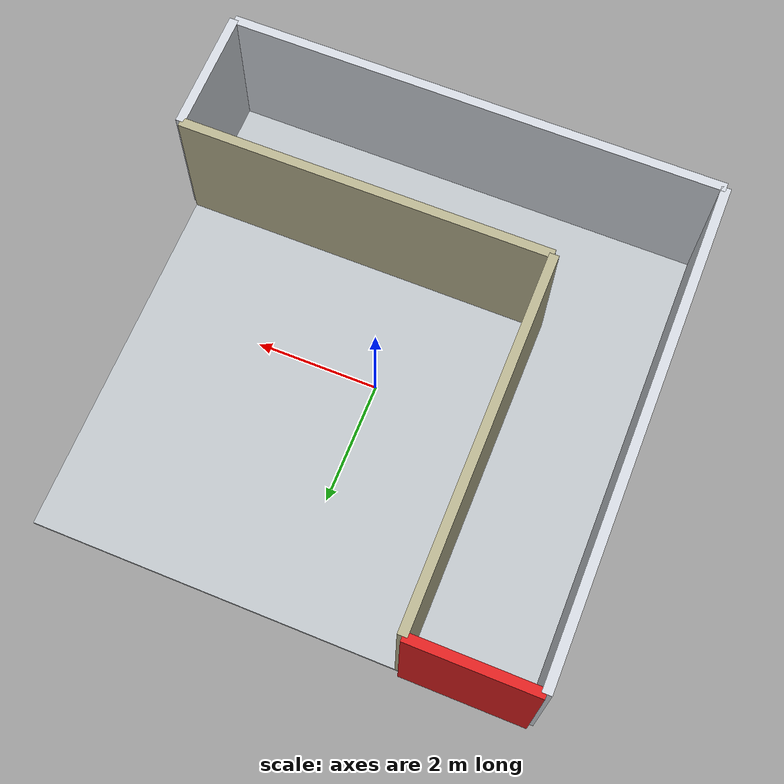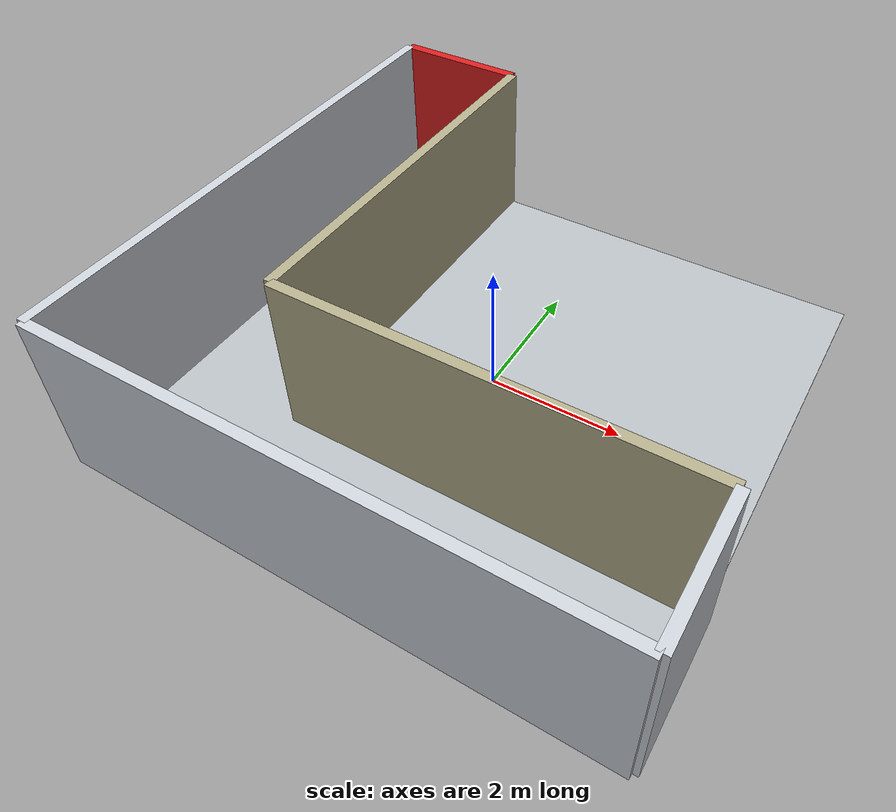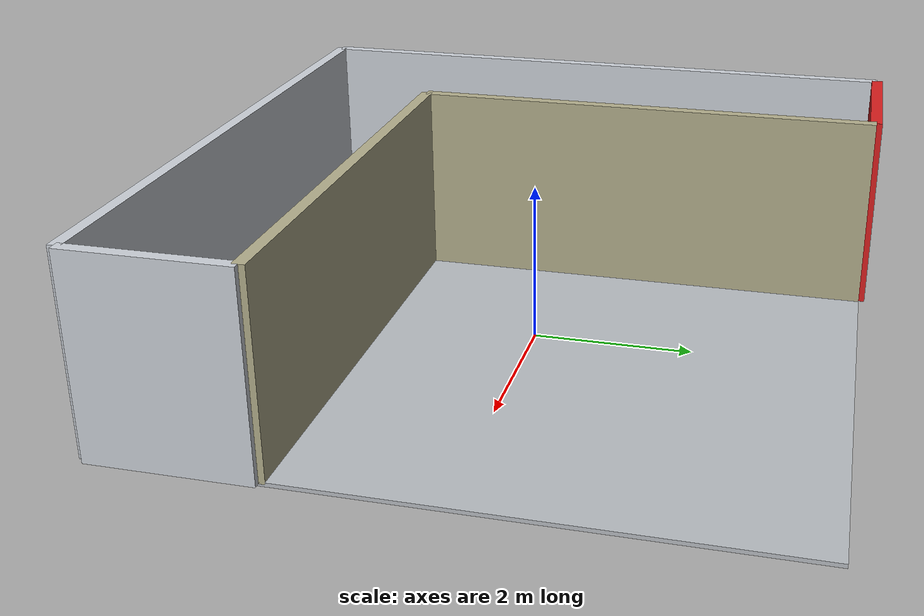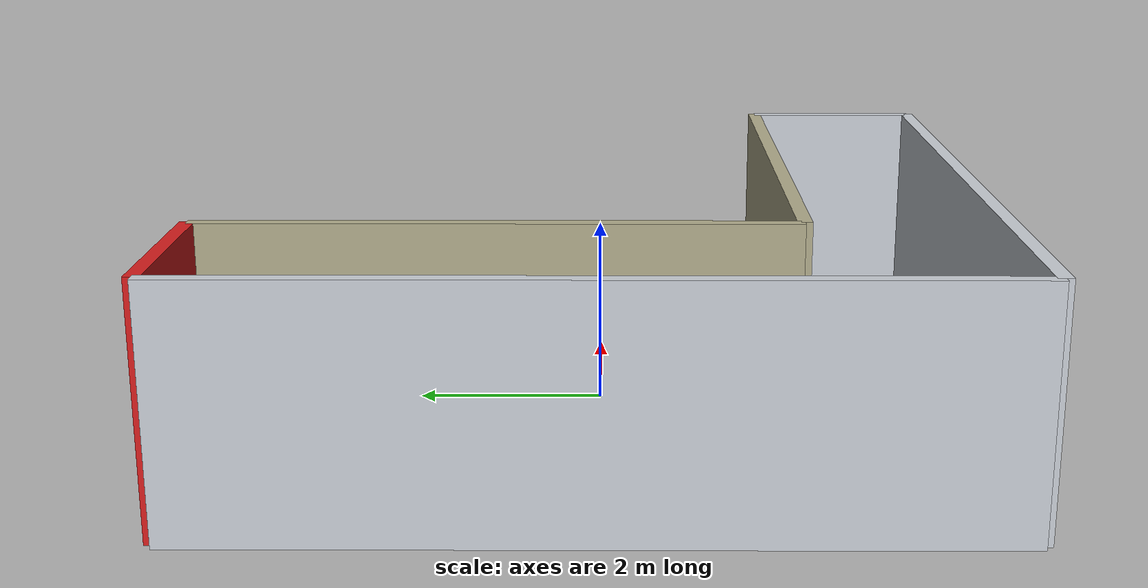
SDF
<sdf version="1.9">
 <world name="corridor_L">
  <physics name="1ms" type="ignored">
   <max_step_size>0.001</max_step_size>
   <real_time_factor>1.0</real_time_factor>
  </physics>
  <plugin filename="gz-sim-physics-system" name="gz::sim::systems::Physics"/>
  <plugin filename="gz-sim-scene-broadcaster-system" name="gz::sim::systems::SceneBroadcaster"/>
  <plugin filename="gz-sim-user-commands-system" name="gz::sim::systems::UserCommands"/>
  <plugin filename="gz-sim-sensors-system" name="gz::sim::systems::Sensors">
   <render_engine>ogre2</render_engine>
  </plugin>
  <plugin filename="gz-sim-imu-system" name="gz::sim::systems::Imu"/>
  <plugin filename="gz-sim-navsat-system" name="gz::sim::systems::NavSat"/>
  <spherical_coordinates>
   <latitude_deg>-35.363262</latitude_deg>
   <longitude_deg>149.165237</longitude_deg>
   <elevation>584.0</elevation>
   <heading_deg>0</heading_deg>
   <surface_model>EARTH_WGS84</surface_model>
  </spherical_coordinates>
  <light type="directional" name="main_light">
   <cast_shadows>false</cast_shadows>
   <pose>0 0 10 0 0 0</pose>
   <diffuse>1.0 1.0 1.0 1</diffuse>
   <specular>0.5 0.5 0.5 1</specular>
   <direction>0.1 0.1 -1</direction>
  </light>
  <model name="floor">
   <static>true</static>
   <link name="link">
    <collision name="c"><geometry><box><size>8.0 8.0 0.05</size></box></geometry></collision>
    <visual name="v">
     <geometry><box><size>8.0 8.0 0.05</size></box></geometry>
     <material>
      <ambient>0.72 0.74 0.76 1</ambient>
      <diffuse>0.72 0.74 0.76 1</diffuse>
      <specular>0.1 0.1 0.1 1</specular>
     </material>
    </visual>
   </link>
  </model>
  <model name="out_south">
   <static>true</static>
   <pose>0.0000 -4.0000 1.250 0 0 0.00000</pose>
   <link name="link">
    <collision name="c"><geometry><box><size>8.0000 0.1500 2.500</size></box></geometry></collision>
    <visual name="v">
     <geometry><box><size>8.0000 0.1500 2.500</size></box></geometry>
     <material>
      <ambient>0.8 0.82 0.85 1</ambient>
      <diffuse>0.8 0.82 0.85 1</diffuse>
      <specular>0.1 0.1 0.1 1</specular>
     </material>
    </visual>
   </link>
  </model>
  <model name="out_west">
   <static>true</static>
   <pose>-4.0000 0.0000 1.250 0 0 0.00000</pose>
   <link name="link">
    <collision name="c"><geometry><box><size>0.1500 8.0000 2.500</size></box></geometry></collision>
    <visual name="v">
     <geometry><box><size>0.1500 8.0000 2.500</size></box></geometry>
     <material>
      <ambient>0.8 0.82 0.85 1</ambient>
      <diffuse>0.8 0.82 0.85 1</diffuse>
      <specular>0.1 0.1 0.1 1</specular>
     </material>
    </visual>
   </link>
  </model>
  <model name="h_inner_north">
   <static>true</static>
   <pose>1.0000 -2.0000 1.250 0 0 0.00000</pose>
   <link name="link">
    <collision name="c"><geometry><box><size>6.0000 0.1500 2.500</size></box></geometry></collision>
    <visual name="v">
     <geometry><box><size>6.0000 0.1500 2.500</size></box></geometry>
     <material>
      <ambient>0.7 0.68 0.55 1</ambient>
      <diffuse>0.7 0.68 0.55 1</diffuse>
      <specular>0.1 0.1 0.1 1</specular>
     </material>
    </visual>
   </link>
  </model>
  <model name="h_east_cap">
   <static>true</static>
   <pose>4.0000 -3.0000 1.250 0 0 0.00000</pose>
   <link name="link">
    <collision name="c"><geometry><box><size>0.1500 2.0000 2.500</size></box></geometry></collision>
    <visual name="v">
     <geometry><box><size>0.1500 2.0000 2.500</size></box></geometry>
     <material>
      <ambient>0.8 0.82 0.85 1</ambient>
      <diffuse>0.8 0.82 0.85 1</diffuse>
      <specular>0.1 0.1 0.1 1</specular>
     </material>
    </visual>
   </link>
  </model>
  <model name="v_inner_east">
   <static>true</static>
   <pose>-2.0000 1.0000 1.250 0 0 0.00000</pose>
   <link name="link">
    <collision name="c"><geometry><box><size>0.1500 6.0000 2.500</size></box></geometry></collision>
    <visual name="v">
     <geometry><box><size>0.1500 6.0000 2.500</size></box></geometry>
     <material>
      <ambient>0.7 0.68 0.55 1</ambient>
      <diffuse>0.7 0.68 0.55 1</diffuse>
      <specular>0.1 0.1 0.1 1</specular>
     </material>
    </visual>
   </link>
  </model>
  <model name="v_north_cap">
   <static>true</static>
   <pose>-3.0000 4.0000 1.250 0 0 0.00000</pose>
   <link name="link">
    <collision name="c"><geometry><box><size>2.0000 0.1500 2.500</size></box></geometry></collision>
    <visual name="v">
     <geometry><box><size>2.0000 0.1500 2.500</size></box></geometry>
     <material>
      <ambient>0.85 0.12 0.12 1</ambient>
      <diffuse>0.85 0.12 0.12 1</diffuse>
      <specular>0.1 0.1 0.1 1</specular>
     </material>
    </visual>
   </link>
  </model>
 </world>
</sdf>
